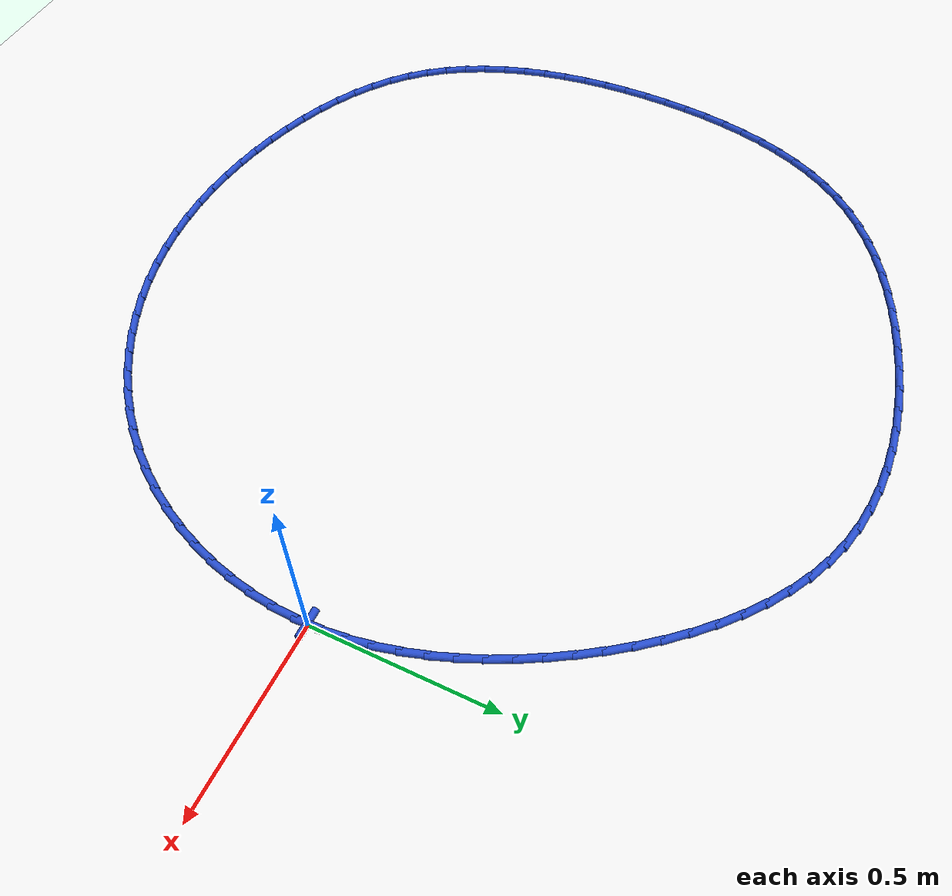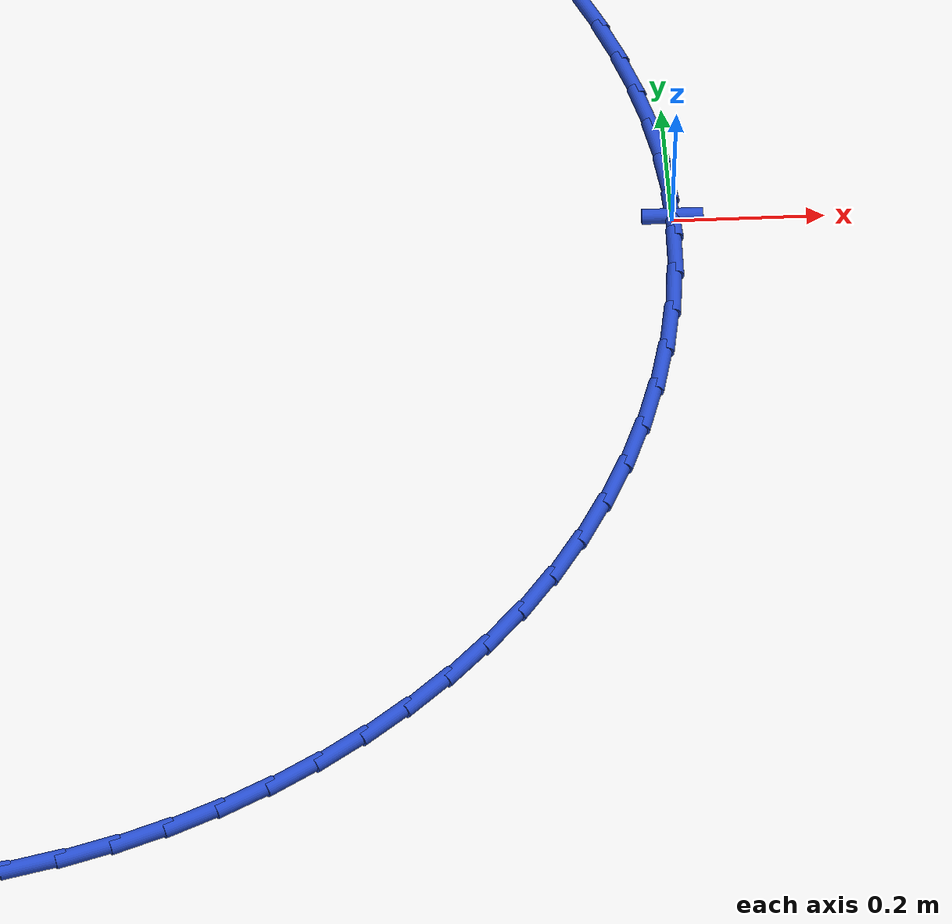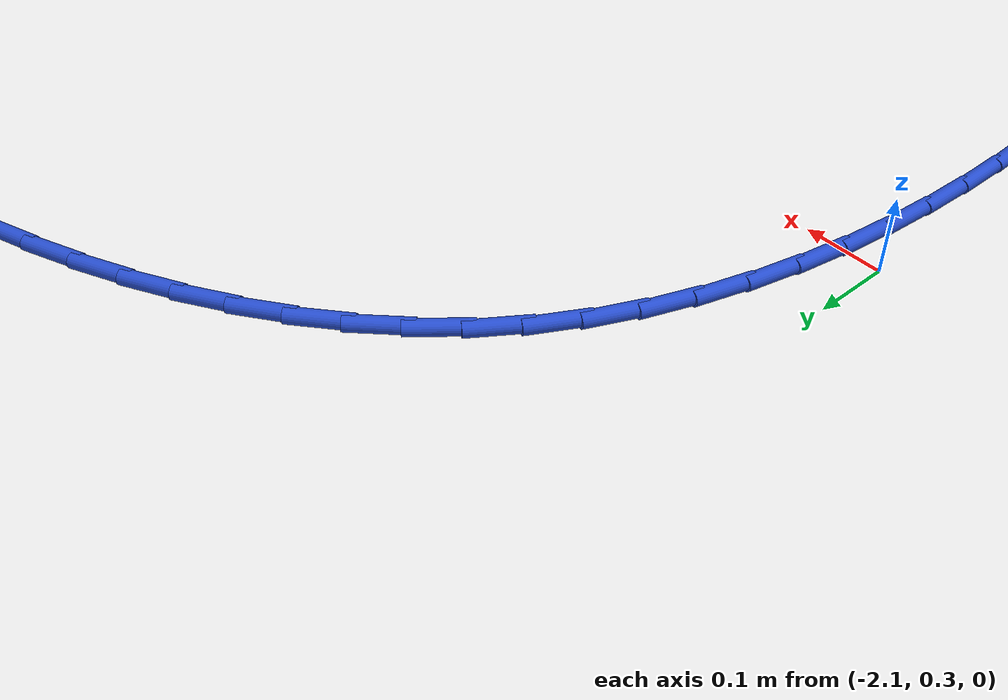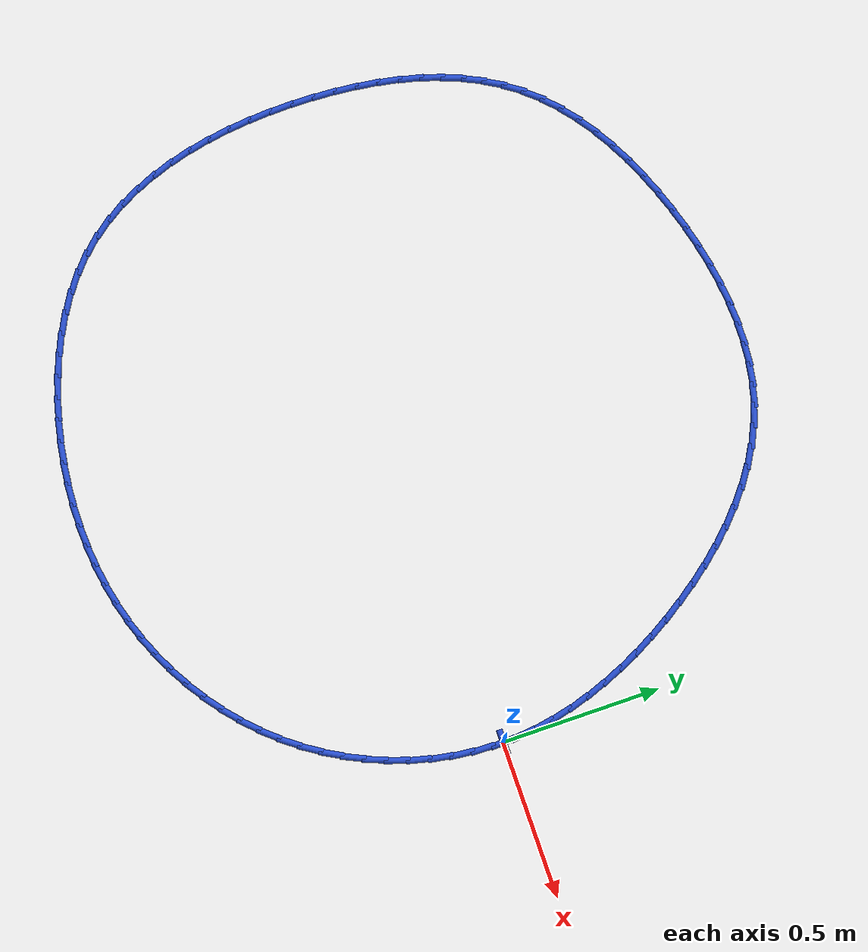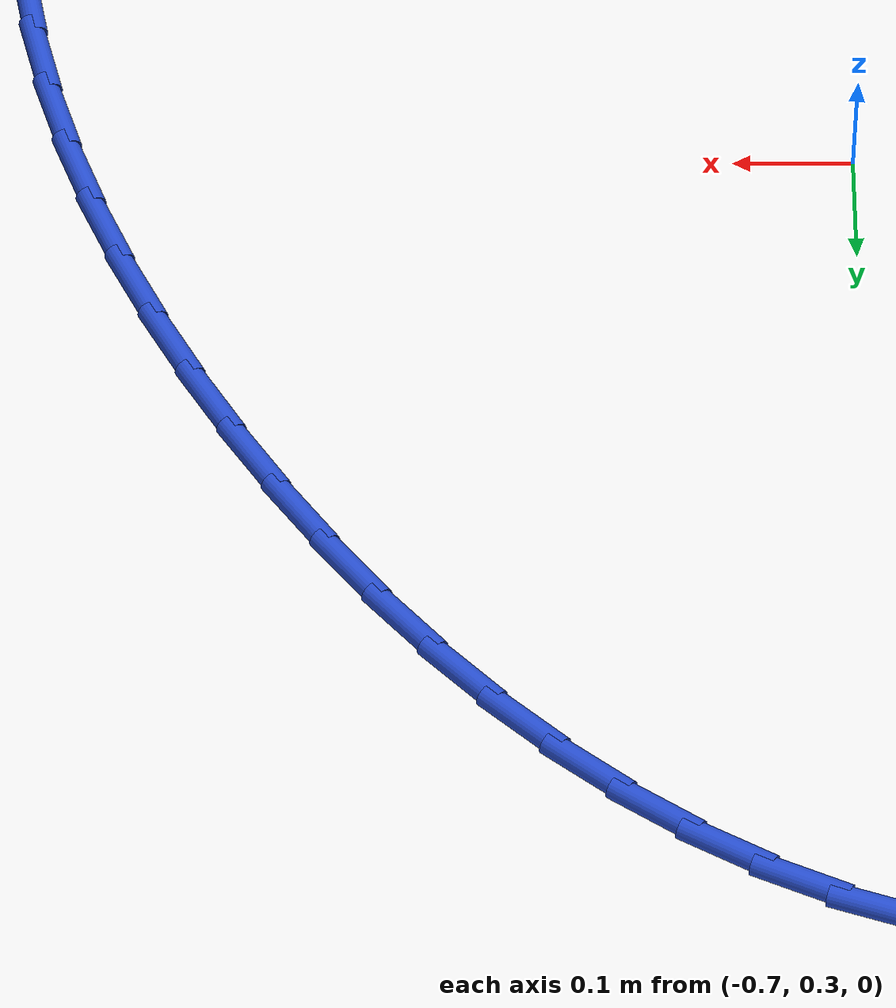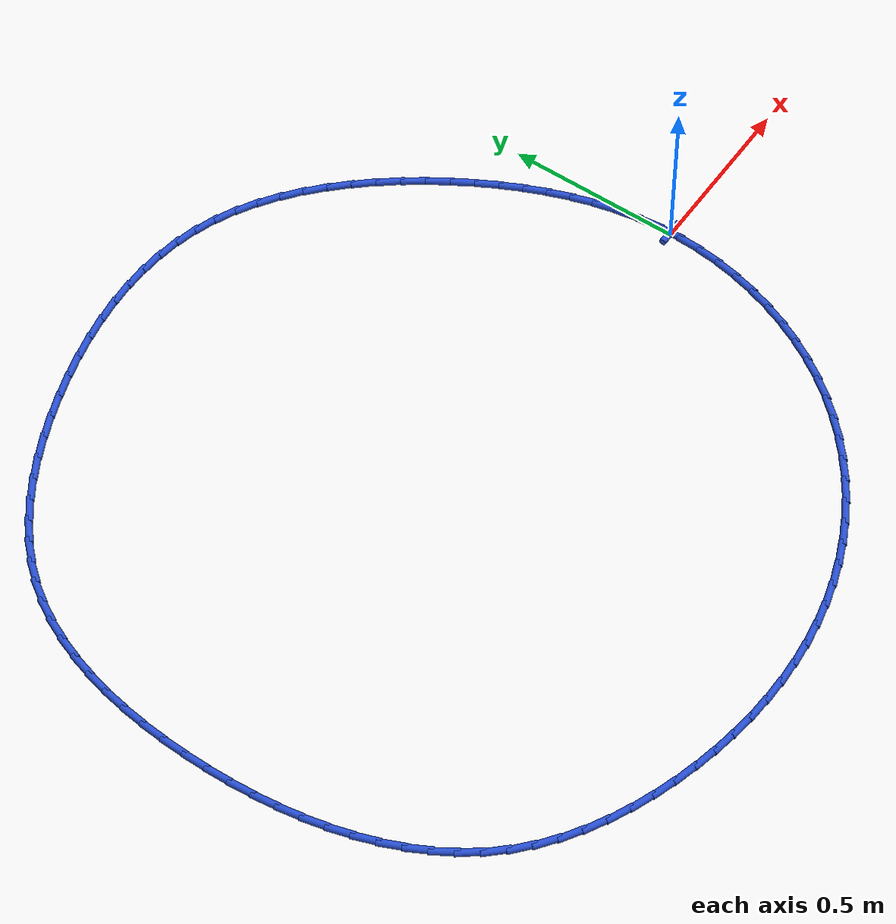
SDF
<sdf version="1.6">
 <world name="default">
  <light name="sun" type="directional">
   <pose>0 0 10 0 -0 0</pose>
   <diffuse>0.8 0.8 0.8 1</diffuse>
   <specular>0.2 0.2 0.2 1</specular>
   <attenuation>
    <range>1000</range>
    <constant>0.9</constant>
    <linear>0.01</linear>
    <quadratic>0.001</quadratic>
   </attenuation>
   <direction>-0.5 0.1 -0.9</direction>
  </light>
  <model name="ground_plane">
   <static>1</static>
   <link name="link">
    <collision name="collision">
     <geometry><plane><normal>0 0 1</normal><size>100 100</size></plane></geometry>
     <surface><friction><ode><mu>100</mu><mu2>50</mu2></ode></friction></surface>
    </collision>
    <visual name="visual">
     <cast_shadows>0</cast_shadows>
     <geometry><plane><normal>0 0 1</normal><size>100 100</size></plane></geometry>
     <material>
      <script><uri>file://media/materials/scripts/gazebo.material</uri><name>Gazebo/WhiteGlow</name></script>
     </material>
    </visual>
   </link>
  </model>
  <gravity>0 0 -9.8</gravity>
  <magnetic_field>6e-06 2.3e-05 -4.2e-05</magnetic_field>
  <atmosphere type="adiabatic"/>
  <physics name="default_physics" default="0" type="ode">
   <max_step_size>0.001</max_step_size>
   <real_time_factor>1</real_time_factor>
   <real_time_update_rate>1000</real_time_update_rate>
  </physics>
  <scene><ambient>0.4 0.4 0.4 1</ambient><background>0.7 0.7 0.7 1</background><shadows>1</shadows></scene>
  <spherical_coordinates>
   <surface_model>EARTH_WGS84</surface_model>
   <latitude_deg>0</latitude_deg>
   <longitude_deg>0</longitude_deg>
   <elevation>0</elevation>
   <heading_deg>0</heading_deg>
  </spherical_coordinates>
  <model name="line">
   <link name="link_0">
    <pose>2.0816681711721685e-17 6.938893903907228e-17 0.01 0 1.57 -1.5202223601423688</pose>
    <collision name="collision">
     <geometry><cylinder><radius>0.01</radius><length>0.08</length></cylinder></geometry>
    </collision>
    <visual name="visual">
     <material>
      <script><name>Gazebo/Blue</name><uri>file://media/materials/scripts/gazebo.material</uri></script>
     </material>
     <geometry><cylinder><radius>0.01</radius><length>0.08</length></cylinder></geometry>
    </visual>
   </link>
   <link name="link_1">
    <pose>-0.0032852434347706372 0.06490378858313862 0.01 0 1.57 -1.4490318599067324</pose>
    <collision name="collision">
     <geometry><cylinder><radius>0.01</radius><length>0.08</length></cylinder></geometry>
    </collision>
    <visual name="visual">
     <material>
      <script><name>Gazebo/Blue</name><uri>file://media/materials/scripts/gazebo.material</uri></script>
     </material>
     <geometry><cylinder><radius>0.01</radius><length>0.08</length></cylinder></geometry>
    </visual>
   </link>
   <link name="link_2">
    <pose>-0.011164497213758952 0.12929264211846367 0.01 0 1.57 -1.3814567969587568</pose>
    <collision name="collision">
     <geometry><cylinder><radius>0.01</radius><length>0.08</length></cylinder></geometry>
    </collision>
    <visual name="visual">
     <material>
      <script><name>Gazebo/Blue</name><uri>file://media/materials/scripts/gazebo.material</uri></script>
     </material>
     <geometry><cylinder><radius>0.01</radius><length>0.08</length></cylinder></geometry>
    </visual>
   </link>
   <link name="link_3">
    <pose>-0.023392796382314632 0.19310299795150238 0.01 0 1.57 -1.3177837166110253</pose>
    <collision name="collision">
     <geometry><cylinder><radius>0.01</radius><length>0.08</length></cylinder></geometry>
    </collision>
    <visual name="visual">
     <material>
      <script><name>Gazebo/Blue</name><uri>file://media/materials/scripts/gazebo.material</uri></script>
     </material>
     <geometry><cylinder><radius>0.01</radius><length>0.08</length></cylinder></geometry>
    </visual>
   </link>
   <link name="link_4">
    <pose>-0.039725175985787384 0.25627129342778177 0.01 0 1.57 -1.2581417333483003</pose>
    <collision name="collision">
     <geometry><cylinder><radius>0.01</radius><length>0.08</length></cylinder></geometry>
    </collision>
    <visual name="visual">
     <material>
      <script><name>Gazebo/Blue</name><uri>file://media/materials/scripts/gazebo.material</uri></script>
     </material>
     <geometry><cylinder><radius>0.01</radius><length>0.08</length></cylinder></geometry>
    </visual>
   </link>
   <link name="link_5">
    <pose>-0.05991667106952688 0.31873396589282893 0.01 0 1.57 -1.2025302986739368</pose>
    <collision name="collision">
     <geometry><cylinder><radius>0.01</radius><length>0.08</length></cylinder></geometry>
    </collision>
    <visual name="visual">
     <material>
      <script><name>Gazebo/Blue</name><uri>file://media/materials/scripts/gazebo.material</uri></script>
     </material>
     <geometry><cylinder><radius>0.01</radius><length>0.08</length></cylinder></geometry>
    </visual>
   </link>
   <link name="link_6">
    <pose>-0.08372231667888283 0.38042745269217104 0.01 0 1.57 -1.1508498058420664</pose>
    <collision name="collision">
     <geometry><cylinder><radius>0.01</radius><length>0.08</length></cylinder></geometry>
    </collision>
    <visual name="visual">
     <material>
      <script><name>Gazebo/Blue</name><uri>file://media/materials/scripts/gazebo.material</uri></script>
     </material>
     <geometry><cylinder><radius>0.01</radius><length>0.08</length></cylinder></geometry>
    </visual>
   </link>
   <link name="link_7">
    <pose>-0.11089714785920499 0.4412881911713353 0.01 0 1.57 -1.1029306444408744</pose>
    <collision name="collision">
     <geometry><cylinder><radius>0.01</radius><length>0.08</length></cylinder></geometry>
    </collision>
    <visual name="visual">
     <material>
      <script><name>Gazebo/Blue</name><uri>file://media/materials/scripts/gazebo.material</uri></script>
     </material>
     <geometry><cylinder><radius>0.01</radius><length>0.08</length></cylinder></geometry>
    </visual>
   </link>
   <link name="link_8">
    <pose>-0.14119619965584299 0.5012526186758486 0.01 0 1.57 -1.0585582054475426</pose>
    <collision name="collision">
     <geometry><cylinder><radius>0.01</radius><length>0.08</length></cylinder></geometry>
    </collision>
    <visual name="visual">
     <material>
      <script><name>Gazebo/Blue</name><uri>file://media/materials/scripts/gazebo.material</uri></script>
     </material>
     <geometry><cylinder><radius>0.01</radius><length>0.08</length></cylinder></geometry>
    </visual>
   </link>
   <link name="link_9">
    <pose>-0.17437450711414648 0.560257172551238 0.01 0 1.57 -1.017363008705654</pose>
    <collision name="collision">
     <geometry><cylinder><radius>0.01</radius><length>0.08</length></cylinder></geometry>
    </collision>
    <visual name="visual">
     <material>
      <script><name>Gazebo/Blue</name><uri>file://media/materials/scripts/gazebo.material</uri></script>
     </material>
     <geometry><cylinder><radius>0.01</radius><length>0.08</length></cylinder></geometry>
    </visual>
   </link>
   <link name="link_10">
    <pose>-0.2101918570021424 0.618229143480172 0.01 0 1.57 -0.9764073362482691</pose>
    <collision name="collision">
     <geometry><cylinder><radius>0.01</radius><length>0.08</length></cylinder></geometry>
    </collision>
    <visual name="visual">
     <material>
      <script><name>Gazebo/Blue</name><uri>file://media/materials/scripts/gazebo.material</uri></script>
     </material>
     <geometry><cylinder><radius>0.01</radius><length>0.08</length></cylinder></geometry>
    </visual>
   </link>
   <link name="link_11">
    <pose>-0.24850441258039296 0.6749103055769756 0.01 0 1.57 -0.9327434005835694</pose>
    <collision name="collision">
     <geometry><cylinder><radius>0.01</radius><length>0.08</length></cylinder></geometry>
    </collision>
    <visual name="visual">
     <material>
      <script><name>Gazebo/Blue</name><uri>file://media/materials/scripts/gazebo.material</uri></script>
     </material>
     <geometry><cylinder><radius>0.01</radius><length>0.08</length></cylinder></geometry>
    </visual>
   </link>
   <link name="link_12">
    <pose>-0.28925804271117433 0.7298697572862852 0.01 0 1.57 -0.8857050484634152</pose>
    <collision name="collision">
     <geometry><cylinder><radius>0.01</radius><length>0.08</length></cylinder></geometry>
    </collision>
    <visual name="visual">
     <material>
      <script><name>Gazebo/Blue</name><uri>file://media/materials/scripts/gazebo.material</uri></script>
     </material>
     <geometry><cylinder><radius>0.01</radius><length>0.08</length></cylinder></geometry>
    </visual>
   </link>
   <link name="link_13">
    <pose>-0.33240203164904053 0.7826700227124764 0.01 0 1.57 -0.834685287914541</pose>
    <collision name="collision">
     <geometry><cylinder><radius>0.01</radius><length>0.08</length></cylinder></geometry>
    </collision>
    <visual name="visual">
     <material>
      <script><name>Gazebo/Blue</name><uri>file://media/materials/scripts/gazebo.material</uri></script>
     </material>
     <geometry><cylinder><radius>0.01</radius><length>0.08</length></cylinder></geometry>
    </visual>
   </link>
   <link name="link_14">
    <pose>-0.3778856636485457 0.8328736259599254 0.01 0 1.57 -0.7790460128691424</pose>
    <collision name="collision">
     <geometry><cylinder><radius>0.01</radius><length>0.08</length></cylinder></geometry>
    </collision>
    <visual name="visual">
     <material>
      <script><name>Gazebo/Blue</name><uri>file://media/materials/scripts/gazebo.material</uri></script>
     </material>
     <geometry><cylinder><radius>0.01</radius><length>0.08</length></cylinder></geometry>
    </visual>
   </link>
   <link name="link_15">
    <pose>-0.4256582229642437 0.8800430911330075 0.01 0 1.57 -0.7181322564949646</pose>
    <collision name="collision">
     <geometry><cylinder><radius>0.01</radius><length>0.08</length></cylinder></geometry>
    </collision>
    <visual name="visual">
     <material>
      <script><name>Gazebo/Blue</name><uri>file://media/materials/scripts/gazebo.material</uri></script>
     </material>
     <geometry><cylinder><radius>0.01</radius><length>0.08</length></cylinder></geometry>
    </visual>
   </link>
   <link name="link_16">
    <pose>-0.47566899385068895 0.9237409423360989 0.01 0 1.57 -0.6513027858250384</pose>
    <collision name="collision">
     <geometry><cylinder><radius>0.01</radius><length>0.08</length></cylinder></geometry>
    </collision>
    <visual name="visual">
     <material>
      <script><name>Gazebo/Blue</name><uri>file://media/materials/scripts/gazebo.material</uri></script>
     </material>
     <geometry><cylinder><radius>0.01</radius><length>0.08</length></cylinder></geometry>
    </visual>
   </link>
   <link name="link_17">
    <pose>-0.5278672605624353 0.9635297036735757 0.01 0 1.57 -0.5779832220956896</pose>
    <collision name="collision">
     <geometry><cylinder><radius>0.01</radius><length>0.08</length></cylinder></geometry>
    </collision>
    <visual name="visual">
     <material>
      <script><name>Gazebo/Blue</name><uri>file://media/materials/scripts/gazebo.material</uri></script>
     </material>
     <geometry><cylinder><radius>0.01</radius><length>0.08</length></cylinder></geometry>
    </visual>
   </link>
   <link name="link_18">
    <pose>-0.5822023073540369 0.9989718992498134 0.01 0 1.57 -0.49774716574735073</pose>
    <collision name="collision">
     <geometry><cylinder><radius>0.01</radius><length>0.08</length></cylinder></geometry>
    </collision>
    <visual name="visual">
     <material>
      <script><name>Gazebo/Blue</name><uri>file://media/materials/scripts/gazebo.material</uri></script>
     </material>
     <geometry><cylinder><radius>0.01</radius><length>0.08</length></cylinder></geometry>
    </visual>
   </link>
   <link name="link_19">
    <pose>-0.6386234184800479 1.0296300531691887 0.01 0 1.57 -0.41042632719341593</pose>
    <collision name="collision">
     <geometry><cylinder><radius>0.01</radius><length>0.08</length></cylinder></geometry>
    </collision>
    <visual name="visual">
     <material>
      <script><name>Gazebo/Blue</name><uri>file://media/materials/scripts/gazebo.material</uri></script>
     </material>
     <geometry><cylinder><radius>0.01</radius><length>0.08</length></cylinder></geometry>
    </visual>
   </link>
   <link name="link_20">
    <pose>-0.6970798781950223 1.0550666895360763 0.01 0 1.57 -0.31693283512487985</pose>
    <collision name="collision">
     <geometry><cylinder><radius>0.01</radius><length>0.08</length></cylinder></geometry>
    </collision>
    <visual name="visual">
     <material>
      <script><name>Gazebo/Blue</name><uri>file://media/materials/scripts/gazebo.material</uri></script>
     </material>
     <geometry><cylinder><radius>0.01</radius><length>0.08</length></cylinder></geometry>
    </visual>
   </link>
   <link name="link_21">
    <pose>-0.7575079977851633 1.0748864391878725 0.01 0 1.57 -0.2252390777203573</pose>
    <collision name="collision">
     <geometry><cylinder><radius>0.01</radius><length>0.08</length></cylinder></geometry>
    </collision>
    <visual name="visual">
     <material>
      <script><name>Gazebo/Blue</name><uri>file://media/materials/scripts/gazebo.material</uri></script>
     </material>
     <geometry><cylinder><radius>0.01</radius><length>0.08</length></cylinder></geometry>
    </visual>
   </link>
   <link name="link_22">
    <pose>-0.8197072808931384 1.089137973428706 0.01 0 1.57 -0.14035785605204856</pose>
    <collision name="collision">
     <geometry><cylinder><radius>0.01</radius><length>0.08</length></cylinder></geometry>
    </collision>
    <visual name="visual">
     <material>
      <script><name>Gazebo/Blue</name><uri>file://media/materials/scripts/gazebo.material</uri></script>
     </material>
     <geometry><cylinder><radius>0.01</radius><length>0.08</length></cylinder></geometry>
    </visual>
   </link>
   <link name="link_23">
    <pose>-0.8833951922866781 1.0981362394766492 0.01 0 1.57 -0.06253780243833504</pose>
    <collision name="collision">
     <geometry><cylinder><radius>0.01</radius><length>0.08</length></cylinder></geometry>
    </collision>
    <visual name="visual">
     <material>
      <script><name>Gazebo/Blue</name><uri>file://media/materials/scripts/gazebo.material</uri></script>
     </material>
     <geometry><cylinder><radius>0.01</radius><length>0.08</length></cylinder></geometry>
    </visual>
   </link>
   <link name="link_24">
    <pose>-0.9482880836939283 1.1021997971740713 0.01 0 1.57 0.008396024439587863</pose>
    <collision name="collision">
     <geometry><cylinder><radius>0.01</radius><length>0.08</length></cylinder></geometry>
    </collision>
    <visual name="visual">
     <material>
      <script><name>Gazebo/Blue</name><uri>file://media/materials/scripts/gazebo.material</uri></script>
     </material>
     <geometry><cylinder><radius>0.01</radius><length>0.08</length></cylinder></geometry>
    </visual>
   </link>
   <link name="link_25">
    <pose>-1.0141023068430344 1.1016472063633416 0.01 0 1.57 0.07285862043494026</pose>
    <collision name="collision">
     <geometry><cylinder><radius>0.01</radius><length>0.08</length></cylinder></geometry>
    </collision>
    <visual name="visual">
     <material>
      <script><name>Gazebo/Blue</name><uri>file://media/materials/scripts/gazebo.material</uri></script>
     </material>
     <geometry><cylinder><radius>0.01</radius><length>0.08</length></cylinder></geometry>
    </visual>
   </link>
   <link name="link_26">
    <pose>-1.0805542134621415 1.0967970268868286 0.01 0 1.57 0.13140050366775619</pose>
    <collision name="collision">
     <geometry><cylinder><radius>0.01</radius><length>0.08</length></cylinder></geometry>
    </collision>
    <visual name="visual">
     <material>
      <script><name>Gazebo/Blue</name><uri>file://media/materials/scripts/gazebo.material</uri></script>
     </material>
     <geometry><cylinder><radius>0.01</radius><length>0.08</length></cylinder></geometry>
    </visual>
   </link>
   <link name="link_27">
    <pose>-1.1473601552793953 1.087967818586902 0.01 0 1.57 0.1846308786092395</pose>
    <collision name="collision">
     <geometry><cylinder><radius>0.01</radius><length>0.08</length></cylinder></geometry>
    </collision>
    <visual name="visual">
     <material>
      <script><name>Gazebo/Blue</name><uri>file://media/materials/scripts/gazebo.material</uri></script>
     </material>
     <geometry><cylinder><radius>0.01</radius><length>0.08</length></cylinder></geometry>
    </visual>
   </link>
   <link name="link_28">
    <pose>-1.2142364840229416 1.0754781413059307 0.01 0 1.57 0.23316713310214854</pose>
    <collision name="collision">
     <geometry><cylinder><radius>0.01</radius><length>0.08</length></cylinder></geometry>
    </collision>
    <visual name="visual">
     <material>
      <script><name>Gazebo/Blue</name><uri>file://media/materials/scripts/gazebo.material</uri></script>
     </material>
     <geometry><cylinder><radius>0.01</radius><length>0.08</length></cylinder></geometry>
    </visual>
   </link>
   <link name="link_29">
    <pose>-1.2808995514209247 1.0596465548862841 0.01 0 1.57 0.2776053402650076</pose>
    <collision name="collision">
     <geometry><cylinder><radius>0.01</radius><length>0.08</length></cylinder></geometry>
    </collision>
    <visual name="visual">
     <material>
      <script><name>Gazebo/Blue</name><uri>file://media/materials/scripts/gazebo.material</uri></script>
     </material>
     <geometry><cylinder><radius>0.01</radius><length>0.08</length></cylinder></geometry>
    </visual>
   </link>
   <link name="link_30">
    <pose>-1.347065709201491 1.0407916191703308 0.01 0 1.57 0.31876971007618754</pose>
    <collision name="collision">
     <geometry><cylinder><radius>0.01</radius><length>0.08</length></cylinder></geometry>
    </collision>
    <visual name="visual">
     <material>
      <script><name>Gazebo/Blue</name><uri>file://media/materials/scripts/gazebo.material</uri></script>
     </material>
     <geometry><cylinder><radius>0.01</radius><length>0.08</length></cylinder></geometry>
    </visual>
   </link>
   <link name="link_31">
    <pose>-1.412445766993821 1.019214594238291 0.01 0 1.57 0.36073953937575165</pose>
    <collision name="collision">
     <geometry><cylinder><radius>0.01</radius><length>0.08</length></cylinder></geometry>
    </collision>
    <visual name="visual">
     <material>
      <script><name>Gazebo/Blue</name><uri>file://media/materials/scripts/gazebo.material</uri></script>
     </material>
     <geometry><cylinder><radius>0.01</radius><length>0.08</length></cylinder></geometry>
    </visual>
   </link>
   <link name="link_32">
    <pose>-1.4766759502680276 0.9949839243689831 0.01 0 1.57 0.4066031005971883</pose>
    <collision name="collision">
     <geometry><cylinder><radius>0.01</radius><length>0.08</length></cylinder></geometry>
    </collision>
    <visual name="visual">
     <material>
      <script><name>Gazebo/Blue</name><uri>file://media/materials/scripts/gazebo.material</uri></script>
     </material>
     <geometry><cylinder><radius>0.01</radius><length>0.08</length></cylinder></geometry>
    </visual>
   </link>
   <link name="link_33">
    <pose>-1.5393390576276544 0.9680012809109914 0.01 0 1.57 0.45700370729811834</pose>
    <collision name="collision">
     <geometry><cylinder><radius>0.01</radius><length>0.08</length></cylinder></geometry>
    </collision>
    <visual name="visual">
     <material>
      <script><name>Gazebo/Blue</name><uri>file://media/materials/scripts/gazebo.material</uri></script>
     </material>
     <geometry><cylinder><radius>0.01</radius><length>0.08</length></cylinder></geometry>
    </visual>
   </link>
   <link name="link_34">
    <pose>-1.6000167252235316 0.9381647065957283 0.01 0 1.57 0.5125643041102167</pose>
    <collision name="collision">
     <geometry><cylinder><radius>0.01</radius><length>0.08</length></cylinder></geometry>
    </collision>
    <visual name="visual">
     <material>
      <script><name>Gazebo/Blue</name><uri>file://media/materials/scripts/gazebo.material</uri></script>
     </material>
     <geometry><cylinder><radius>0.01</radius><length>0.08</length></cylinder></geometry>
    </visual>
   </link>
   <link name="link_35">
    <pose>-1.6582905892064872 0.9053722441546057 0.01 0 1.57 0.5739208240982773</pose>
    <collision name="collision">
     <geometry><cylinder><radius>0.01</radius><length>0.08</length></cylinder></geometry>
    </collision>
    <visual name="visual">
     <material>
      <script><name>Gazebo/Blue</name><uri>file://media/materials/scripts/gazebo.material</uri></script>
     </material>
     <geometry><cylinder><radius>0.01</radius><length>0.08</length></cylinder></geometry>
    </visual>
   </link>
   <link name="link_36">
    <pose>-1.7137422857273505 0.8695219363190352 0.01 0 1.57 0.6416812300250371</pose>
    <collision name="collision">
     <geometry><cylinder><radius>0.01</radius><length>0.08</length></cylinder></geometry>
    </collision>
    <visual name="visual">
     <material>
      <script><name>Gazebo/Blue</name><uri>file://media/materials/scripts/gazebo.material</uri></script>
     </material>
     <geometry><cylinder><radius>0.01</radius><length>0.08</length></cylinder></geometry>
    </visual>
   </link>
   <link name="link_37">
    <pose>-1.7659534509369506 0.8305118258204289 0.01 0 1.57 0.7163590498264155</pose>
    <collision name="collision">
     <geometry><cylinder><radius>0.01</radius><length>0.08</length></cylinder></geometry>
    </collision>
    <visual name="visual">
     <material>
      <script><name>Gazebo/Blue</name><uri>file://media/materials/scripts/gazebo.material</uri></script>
     </material>
     <geometry><cylinder><radius>0.01</radius><length>0.08</length></cylinder></geometry>
    </visual>
   </link>
   <link name="link_38">
    <pose>-1.8145057209861175 0.7882399553901991 0.01 0 1.57 0.798276919525755</pose>
    <collision name="collision">
     <geometry><cylinder><radius>0.01</radius><length>0.08</length></cylinder></geometry>
    </collision>
    <visual name="visual">
     <material>
      <script><name>Gazebo/Blue</name><uri>file://media/materials/scripts/gazebo.material</uri></script>
     </material>
     <geometry><cylinder><radius>0.01</radius><length>0.08</length></cylinder></geometry>
    </visual>
   </link>
   <link name="link_39">
    <pose>-1.8589807320256793 0.7426043677597572 0.01 0 1.57 0.8874364982516892</pose>
    <collision name="collision">
     <geometry><cylinder><radius>0.01</radius><length>0.08</length></cylinder></geometry>
    </collision>
    <visual name="visual">
     <material>
      <script><name>Gazebo/Blue</name><uri>file://media/materials/scripts/gazebo.material</uri></script>
     </material>
     <geometry><cylinder><radius>0.01</radius><length>0.08</length></cylinder></geometry>
    </visual>
   </link>
   <link name="link_40">
    <pose>-1.8989604508126976 0.6935033170272523 0.01 0 1.57 0.9803146711823199</pose>
    <collision name="collision">
     <geometry><cylinder><radius>0.01</radius><length>0.08</length></cylinder></geometry>
    </collision>
    <visual name="visual">
     <material>
      <script><name>Gazebo/Blue</name><uri>file://media/materials/scripts/gazebo.material</uri></script>
     </material>
     <geometry><cylinder><radius>0.01</radius><length>0.08</length></cylinder></geometry>
    </visual>
   </link>
   <link name="link_41">
    <pose>-1.9341911335798208 0.6409400926078281 0.01 0 1.57 1.068002250723521</pose>
    <collision name="collision">
     <geometry><cylinder><radius>0.01</radius><length>0.08</length></cylinder></geometry>
    </collision>
    <visual name="visual">
     <material>
      <script><name>Gazebo/Blue</name><uri>file://media/materials/scripts/gazebo.material</uri></script>
     </material>
     <geometry><cylinder><radius>0.01</radius><length>0.08</length></cylinder></geometry>
    </visual>
   </link>
   <link name="link_42">
    <pose>-1.9648486573414463 0.5851926537020007 0.01 0 1.57 1.1485755233855581</pose>
    <collision name="collision">
     <geometry><cylinder><radius>0.01</radius><length>0.08</length></cylinder></geometry>
    </collision>
    <visual name="visual">
     <material>
      <script><name>Gazebo/Blue</name><uri>file://media/materials/scripts/gazebo.material</uri></script>
     </material>
     <geometry><cylinder><radius>0.01</radius><length>0.08</length></cylinder></geometry>
    </visual>
   </link>
   <link name="link_43">
    <pose>-1.9911782571433274 0.5265833022339039 0.01 0 1.57 1.2218675406444055</pose>
    <collision name="collision">
     <geometry><cylinder><radius>0.01</radius><length>0.08</length></cylinder></geometry>
    </collision>
    <visual name="visual">
     <material>
      <script><name>Gazebo/Blue</name><uri>file://media/materials/scripts/gazebo.material</uri></script>
     </material>
     <geometry><cylinder><radius>0.01</radius><length>0.08</length></cylinder></geometry>
    </visual>
   </link>
   <link name="link_44">
    <pose>-2.013425168031214 0.4654343401276723 0.01 0 1.57 1.2880551194597347</pose>
    <collision name="collision">
     <geometry><cylinder><radius>0.01</radius><length>0.08</length></cylinder></geometry>
    </collision>
    <visual name="visual">
     <material>
      <script><name>Gazebo/Blue</name><uri>file://media/materials/scripts/gazebo.material</uri></script>
     </material>
     <geometry><cylinder><radius>0.01</radius><length>0.08</length></cylinder></geometry>
    </visual>
   </link>
   <link name="link_45">
    <pose>-2.03183462505086 0.4020680693074402 0.01 0 1.57 1.3475364035428783</pose>
    <collision name="collision">
     <geometry><cylinder><radius>0.01</radius><length>0.08</length></cylinder></geometry>
    </collision>
    <visual name="visual">
     <material>
      <script><name>Gazebo/Blue</name><uri>file://media/materials/scripts/gazebo.material</uri></script>
     </material>
     <geometry><cylinder><radius>0.01</radius><length>0.08</length></cylinder></geometry>
    </visual>
   </link>
   <link name="link_46">
    <pose>-2.046651863248016 0.33680679169734207 0.01 0 1.57 1.4008290961022678</pose>
    <collision name="collision">
     <geometry><cylinder><radius>0.01</radius><length>0.08</length></cylinder></geometry>
    </collision>
    <visual name="visual">
     <material>
      <script><name>Gazebo/Blue</name><uri>file://media/materials/scripts/gazebo.material</uri></script>
     </material>
     <geometry><cylinder><radius>0.01</radius><length>0.08</length></cylinder></geometry>
    </visual>
   </link>
   <link name="link_47">
    <pose>-2.0581221176684332 0.2699728092215121 0.01 0 1.57 1.4484960315980364</pose>
    <collision name="collision">
     <geometry><cylinder><radius>0.01</radius><length>0.08</length></cylinder></geometry>
    </collision>
    <visual name="visual">
     <material>
      <script><name>Gazebo/Blue</name><uri>file://media/materials/scripts/gazebo.material</uri></script>
     </material>
     <geometry><cylinder><radius>0.01</radius><length>0.08</length></cylinder></geometry>
    </visual>
   </link>
   <link name="link_48">
    <pose>-2.066490623357865 0.20188842380408503 0.01 0 1.57 1.491096023785072</pose>
    <collision name="collision">
     <geometry><cylinder><radius>0.01</radius><length>0.08</length></cylinder></geometry>
    </collision>
    <visual name="visual">
     <material>
      <script><name>Gazebo/Blue</name><uri>file://media/materials/scripts/gazebo.material</uri></script>
     </material>
     <geometry><cylinder><radius>0.01</radius><length>0.08</length></cylinder></geometry>
    </visual>
   </link>
   <link name="link_49">
    <pose>-2.072002615362063 0.13287593736919454 0.01 0 1.57 1.5292319305067756</pose>
    <collision name="collision">
     <geometry><cylinder><radius>0.01</radius><length>0.08</length></cylinder></geometry>
    </collision>
    <visual name="visual">
     <material>
      <script><name>Gazebo/Blue</name><uri>file://media/materials/scripts/gazebo.material</uri></script>
     </material>
     <geometry><cylinder><radius>0.01</radius><length>0.08</length></cylinder></geometry>
    </visual>
   </link>
   <link name="link_50">
    <pose>-2.0748979113117927 0.06325797794760236 0.01 0 1.57 1.5659826988547842</pose>
    <collision name="collision">
     <geometry><cylinder><radius>0.01</radius><length>0.08</length></cylinder></geometry>
    </collision>
    <visual name="visual">
     <material>
      <script><name>Gazebo/Blue</name><uri>file://media/materials/scripts/gazebo.material</uri></script>
     </material>
     <geometry><cylinder><radius>0.01</radius><length>0.08</length></cylinder></geometry>
    </visual>
   </link>
   <link name="link_51">
    <pose>-2.075234337641267 -0.006631871290730464 0.01 0 1.57 -1.5366378935278298</pose>
    <collision name="collision">
     <geometry><cylinder><radius>0.01</radius><length>0.08</length></cylinder></geometry>
    </collision>
    <visual name="visual">
     <material>
      <script><name>Gazebo/Blue</name><uri>file://media/materials/scripts/gazebo.material</uri></script>
     </material>
     <geometry><cylinder><radius>0.01</radius><length>0.08</length></cylinder></geometry>
    </visual>
   </link>
   <link name="link_52">
    <pose>-2.0728486438698956 -0.0764467192333633 0.01 0 1.57 -1.494790441120984</pose>
    <collision name="collision">
     <geometry><cylinder><radius>0.01</radius><length>0.08</length></cylinder></geometry>
    </collision>
    <visual name="visual">
     <material>
      <script><name>Gazebo/Blue</name><uri>file://media/materials/scripts/gazebo.material</uri></script>
     </material>
     <geometry><cylinder><radius>0.01</radius><length>0.08</length></cylinder></geometry>
    </visual>
   </link>
   <link name="link_53">
    <pose>-2.0675642520885997 -0.14583887251018057 0.01 0 1.57 -1.4495712661845992</pose>
    <collision name="collision">
     <geometry><cylinder><radius>0.01</radius><length>0.08</length></cylinder></geometry>
    </collision>
    <visual name="visual">
     <material>
      <script><name>Gazebo/Blue</name><uri>file://media/materials/scripts/gazebo.material</uri></script>
     </material>
     <geometry><cylinder><radius>0.01</radius><length>0.08</length></cylinder></geometry>
    </visual>
   </link>
   <link name="link_54">
    <pose>-2.059204584388302 -0.21446063775106647 0.01 0 1.57 -1.400450215209708</pose>
    <collision name="collision">
     <geometry><cylinder><radius>0.01</radius><length>0.08</length></cylinder></geometry>
    </collision>
    <visual name="visual">
     <material>
      <script><name>Gazebo/Blue</name><uri>file://media/materials/scripts/gazebo.material</uri></script>
     </material>
     <geometry><cylinder><radius>0.01</radius><length>0.08</length></cylinder></geometry>
    </visual>
   </link>
   <link name="link_55">
    <pose>-2.047593062859923 -0.2819643215859054 0.01 0 1.57 -1.3468685402700502</pose>
    <collision name="collision">
     <geometry><cylinder><radius>0.01</radius><length>0.08</length></cylinder></geometry>
    </collision>
    <visual name="visual">
     <material>
      <script><name>Gazebo/Blue</name><uri>file://media/materials/scripts/gazebo.material</uri></script>
     </material>
     <geometry><cylinder><radius>0.01</radius><length>0.08</length></cylinder></geometry>
    </visual>
   </link>
   <link name="link_56">
    <pose>-2.032553109594387 -0.3480022306445815 0.01 0 1.57 -1.2882534728996737</pose>
    <collision name="collision">
     <geometry><cylinder><radius>0.01</radius><length>0.08</length></cylinder></geometry>
    </collision>
    <visual name="visual">
     <material>
      <script><name>Gazebo/Blue</name><uri>file://media/materials/scripts/gazebo.material</uri></script>
     </material>
     <geometry><cylinder><radius>0.01</radius><length>0.08</length></cylinder></geometry>
    </visual>
   </link>
   <link name="link_57">
    <pose>-2.0139081466826148 -0.4122266715569792 0.01 0 1.57 -1.2240463689415513</pose>
    <collision name="collision">
     <geometry><cylinder><radius>0.01</radius><length>0.08</length></cylinder></geometry>
    </collision>
    <visual name="visual">
     <material>
      <script><name>Gazebo/Blue</name><uri>file://media/materials/scripts/gazebo.material</uri></script>
     </material>
     <geometry><cylinder><radius>0.01</radius><length>0.08</length></cylinder></geometry>
    </visual>
   </link>
   <link name="link_58">
    <pose>-1.9914815962155292 -0.4742899509529821 0.01 0 1.57 -1.1537492700706975</pose>
    <collision name="collision">
     <geometry><cylinder><radius>0.01</radius><length>0.08</length></cylinder></geometry>
    </collision>
    <visual name="visual">
     <material>
      <script><name>Gazebo/Blue</name><uri>file://media/materials/scripts/gazebo.material</uri></script>
     </material>
     <geometry><cylinder><radius>0.01</radius><length>0.08</length></cylinder></geometry>
    </visual>
   </link>
   <link name="link_59">
    <pose>-1.9650968802840523 -0.5338443754624761 0.01 0 1.57 -1.0769939729257993</pose>
    <collision name="collision">
     <geometry><cylinder><radius>0.01</radius><length>0.08</length></cylinder></geometry>
    </collision>
    <visual name="visual">
     <material>
      <script><name>Gazebo/Blue</name><uri>file://media/materials/scripts/gazebo.material</uri></script>
     </material>
     <geometry><cylinder><radius>0.01</radius><length>0.08</length></cylinder></geometry>
    </visual>
   </link>
   <link name="link_60">
    <pose>-1.9345774209791053 -0.5905422517153445 0.01 0 1.57 -0.993634094489035</pose>
    <collision name="collision">
     <geometry><cylinder><radius>0.01</radius><length>0.08</length></cylinder></geometry>
    </collision>
    <visual name="visual">
     <material>
      <script><name>Gazebo/Blue</name><uri>file://media/materials/scripts/gazebo.material</uri></script>
     </material>
     <geometry><cylinder><radius>0.01</radius><length>0.08</length></cylinder></geometry>
    </visual>
   </link>
   <link name="link_61">
    <pose>-1.8997466403916106 -0.6440358863414715 0.01 0 1.57 -0.9038525987463655</pose>
    <collision name="collision">
     <geometry><cylinder><radius>0.01</radius><length>0.08</length></cylinder></geometry>
    </collision>
    <visual name="visual">
     <material>
      <script><name>Gazebo/Blue</name><uri>file://media/materials/scripts/gazebo.material</uri></script>
     </material>
     <geometry><cylinder><radius>0.01</radius><length>0.08</length></cylinder></geometry>
    </visual>
   </link>
   <link name="link_62">
    <pose>-1.8604279606124905 -0.6939775859707416 0.01 0 1.57 -0.808457683412517</pose>
    <collision name="collision">
     <geometry><cylinder><radius>0.01</radius><length>0.08</length></cylinder></geometry>
    </collision>
    <visual name="visual">
     <material>
      <script><name>Gazebo/Blue</name><uri>file://media/materials/scripts/gazebo.material</uri></script>
     </material>
     <geometry><cylinder><radius>0.01</radius><length>0.08</length></cylinder></geometry>
    </visual>
   </link>
   <link name="link_63">
    <pose>-1.8164552682835493 -0.740026501382856 0.01 0 1.57 -0.7142007212992835</pose>
    <collision name="collision">
     <geometry><cylinder><radius>0.01</radius><length>0.08</length></cylinder></geometry>
    </collision>
    <visual name="visual">
     <material>
      <script><name>Gazebo/Blue</name><uri>file://media/materials/scripts/gazebo.material</uri></script>
     </material>
     <geometry><cylinder><radius>0.01</radius><length>0.08</length></cylinder></geometry>
    </visual>
   </link>
   <link name="link_64">
    <pose>-1.7679788622748973 -0.7820487270399377 0.01 0 1.57 -0.6281037484389216</pose>
    <collision name="collision">
     <geometry><cylinder><radius>0.01</radius><length>0.08</length></cylinder></geometry>
    </collision>
    <visual name="visual">
     <material>
      <script><name>Gazebo/Blue</name><uri>file://media/materials/scripts/gazebo.material</uri></script>
     </material>
     <geometry><cylinder><radius>0.01</radius><length>0.08</length></cylinder></geometry>
    </visual>
   </link>
   <link name="link_65">
    <pose>-1.7155143004536233 -0.8201492484301508 0.01 0 1.57 -0.5501839961355535</pose>
    <collision name="collision">
     <geometry><cylinder><radius>0.01</radius><length>0.08</length></cylinder></geometry>
    </collision>
    <visual name="visual">
     <material>
      <script><name>Gazebo/Blue</name><uri>file://media/materials/scripts/gazebo.material</uri></script>
     </material>
     <geometry><cylinder><radius>0.01</radius><length>0.08</length></cylinder></geometry>
    </visual>
   </link>
   <link name="link_66">
    <pose>-1.6595974377515987 -0.854446325968963 0.01 0 1.57 -0.47976776333591764</pose>
    <collision name="collision">
     <geometry><cylinder><radius>0.01</radius><length>0.08</length></cylinder></geometry>
    </collision>
    <visual name="visual">
     <material>
      <script><name>Gazebo/Blue</name><uri>file://media/materials/scripts/gazebo.material</uri></script>
     </material>
     <geometry><cylinder><radius>0.01</radius><length>0.08</length></cylinder></geometry>
    </visual>
   </link>
   <link name="link_67">
    <pose>-1.6007641291006942 -0.8850582200718418 0.01 0 1.57 -0.4160230769296182</pose>
    <collision name="collision">
     <geometry><cylinder><radius>0.01</radius><length>0.08</length></cylinder></geometry>
    </collision>
    <visual name="visual">
     <material>
      <script><name>Gazebo/Blue</name><uri>file://media/materials/scripts/gazebo.material</uri></script>
     </material>
     <geometry><cylinder><radius>0.01</radius><length>0.08</length></cylinder></geometry>
    </visual>
   </link>
   <link name="link_68">
    <pose>-1.5395502294327819 -0.9121031911542545 0.01 0 1.57 -0.35806587457085853</pose>
    <collision name="collision">
     <geometry><cylinder><radius>0.01</radius><length>0.08</length></cylinder></geometry>
    </collision>
    <visual name="visual">
     <material>
      <script><name>Gazebo/Blue</name><uri>file://media/materials/scripts/gazebo.material</uri></script>
     </material>
     <geometry><cylinder><radius>0.01</radius><length>0.08</length></cylinder></geometry>
    </visual>
   </link>
   <link name="link_69">
    <pose>-1.4764915936797327 -0.9356994996316689 0.01 0 1.57 -0.30502144144276966</pose>
    <collision name="collision">
     <geometry><cylinder><radius>0.01</radius><length>0.08</length></cylinder></geometry>
    </collision>
    <visual name="visual">
     <material>
      <script><name>Gazebo/Blue</name><uri>file://media/materials/scripts/gazebo.material</uri></script>
     </material>
     <geometry><cylinder><radius>0.01</radius><length>0.08</length></cylinder></geometry>
    </visual>
   </link>
   <link name="link_70">
    <pose>-1.4121240767734178 -0.9559654059195518 0.01 0 1.57 -0.2557566251234237</pose>
    <collision name="collision">
     <geometry><cylinder><radius>0.01</radius><length>0.08</length></cylinder></geometry>
    </collision>
    <visual name="visual">
     <material>
      <script><name>Gazebo/Blue</name><uri>file://media/materials/scripts/gazebo.material</uri></script>
     </material>
     <geometry><cylinder><radius>0.01</radius><length>0.08</length></cylinder></geometry>
    </visual>
   </link>
   <link name="link_71">
    <pose>-1.346957533324354 -0.9730053472462954 0.01 0 1.57 -0.20706387379519195</pose>
    <collision name="collision">
     <geometry><cylinder><radius>0.01</radius><length>0.08</length></cylinder></geometry>
    </collision>
    <visual name="visual">
     <material>
      <script><name>Gazebo/Blue</name><uri>file://media/materials/scripts/gazebo.material</uri></script>
     </material>
     <geometry><cylinder><radius>0.01</radius><length>0.08</length></cylinder></geometry>
    </visual>
   </link>
   <link name="link_72">
    <pose>-1.2812755702546756 -0.9868034752453894 0.01 0 1.57 -0.15738070884813463</pose>
    <collision name="collision">
     <geometry><cylinder><radius>0.01</radius><length>0.08</length></cylinder></geometry>
    </collision>
    <visual name="visual">
     <material>
      <script><name>Gazebo/Blue</name><uri>file://media/materials/scripts/gazebo.material</uri></script>
     </material>
     <geometry><cylinder><radius>0.01</radius><length>0.08</length></cylinder></geometry>
    </visual>
   </link>
   <link name="link_73">
    <pose>-1.2152453227819235 -0.9972820188479212 0.01 0 1.57 -0.10653402489910913</pose>
    <collision name="collision">
     <geometry><cylinder><radius>0.01</radius><length>0.08</length></cylinder></geometry>
    </collision>
    <visual name="visual">
     <material>
      <script><name>Gazebo/Blue</name><uri>file://media/materials/scripts/gazebo.material</uri></script>
     </material>
     <geometry><cylinder><radius>0.01</radius><length>0.08</length></cylinder></geometry>
    </visual>
   </link>
   <link name="link_74">
    <pose>-1.1490329641975272 -1.0043626955726628 0.01 0 1.57 -0.054372146093959454</pose>
    <collision name="collision">
     <geometry><cylinder><radius>0.01</radius><length>0.08</length></cylinder></geometry>
    </collision>
    <visual name="visual">
     <material>
      <script><name>Gazebo/Blue</name><uri>file://media/materials/scripts/gazebo.material</uri></script>
     </material>
     <geometry><cylinder><radius>0.01</radius><length>0.08</length></cylinder></geometry>
    </visual>
   </link>
   <link name="link_75">
    <pose>-1.0828046677929144 -1.0079672229383838 0.01 0 1.57 -0.0007581263004156489</pose>
    <collision name="collision">
     <geometry><cylinder><radius>0.01</radius><length>0.08</length></cylinder></geometry>
    </collision>
    <visual name="visual">
     <material>
      <script><name>Gazebo/Blue</name><uri>file://media/materials/scripts/gazebo.material</uri></script>
     </material>
     <geometry><cylinder><radius>0.01</radius><length>0.08</length></cylinder></geometry>
    </visual>
   </link>
   <link name="link_76">
    <pose>-1.016726606859514 -1.0080173184638554 0.01 0 1.57 0.054425043141257935</pose>
    <collision name="collision">
     <geometry><cylinder><radius>0.01</radius><length>0.08</length></cylinder></geometry>
    </collision>
    <visual name="visual">
     <material>
      <script><name>Gazebo/Blue</name><uri>file://media/materials/scripts/gazebo.material</uri></script>
     </material>
     <geometry><cylinder><radius>0.01</radius><length>0.08</length></cylinder></geometry>
    </visual>
   </link>
   <link name="link_77">
    <pose>-0.9509649546887542 -1.0044346996678486 0.01 0 1.57 0.111268295518901</pose>
    <collision name="collision">
     <geometry><cylinder><radius>0.01</radius><length>0.08</length></cylinder></geometry>
    </collision>
    <visual name="visual">
     <material>
      <script><name>Gazebo/Blue</name><uri>file://media/materials/scripts/gazebo.material</uri></script>
     </material>
     <geometry><cylinder><radius>0.01</radius><length>0.08</length></cylinder></geometry>
    </visual>
   </link>
   <link name="link_78">
    <pose>-0.8856858845720643 -0.9971410840691338 0.01 0 1.57 0.16982956418560916</pose>
    <collision name="collision">
     <geometry><cylinder><radius>0.01</radius><length>0.08</length></cylinder></geometry>
    </collision>
    <visual name="visual">
     <material>
      <script><name>Gazebo/Blue</name><uri>file://media/materials/scripts/gazebo.material</uri></script>
     </material>
     <geometry><cylinder><radius>0.01</radius><length>0.08</length></cylinder></geometry>
    </visual>
   </link>
   <link name="link_79">
    <pose>-0.8210555698008724 -0.9860581891864819 0.01 0 1.57 0.2301263826814813</pose>
    <collision name="collision">
     <geometry><cylinder><radius>0.01</radius><length>0.08</length></cylinder></geometry>
    </collision>
    <visual name="visual">
     <material>
      <script><name>Gazebo/Blue</name><uri>file://media/materials/scripts/gazebo.material</uri></script>
     </material>
     <geometry><cylinder><radius>0.01</radius><length>0.08</length></cylinder></geometry>
    </visual>
   </link>
   <link name="link_80">
    <pose>-0.757240183666607 -0.9711077325386638 0.01 0 1.57 0.292128524304595</pose>
    <collision name="collision">
     <geometry><cylinder><radius>0.01</radius><length>0.08</length></cylinder></geometry>
    </collision>
    <visual name="visual">
     <material>
      <script><name>Gazebo/Blue</name><uri>file://media/materials/scripts/gazebo.material</uri></script>
     </material>
     <geometry><cylinder><radius>0.01</radius><length>0.08</length></cylinder></geometry>
    </visual>
   </link>
   <link name="link_81">
    <pose>-0.6944058994606966 -0.9522114316444498 0.01 0 1.57 0.35542068702447127</pose>
    <collision name="collision">
     <geometry><cylinder><radius>0.01</radius><length>0.08</length></cylinder></geometry>
    </collision>
    <visual name="visual">
     <material>
      <script><name>Gazebo/Blue</name><uri>file://media/materials/scripts/gazebo.material</uri></script>
     </material>
     <geometry><cylinder><radius>0.01</radius><length>0.08</length></cylinder></geometry>
    </visual>
   </link>
   <link name="link_82">
    <pose>-0.6327327973564777 -0.9293193810892822 0.01 0 1.57 0.418485046165918</pose>
    <collision name="collision">
     <geometry><cylinder><radius>0.01</radius><length>0.08</length></cylinder></geometry>
    </collision>
    <visual name="visual">
     <material>
      <script><name>Gazebo/Blue</name><uri>file://media/materials/scripts/gazebo.material</uri></script>
     </material>
     <geometry><cylinder><radius>0.01</radius><length>0.08</length></cylinder></geometry>
    </visual>
   </link>
   <link name="link_83">
    <pose>-0.5724665792891103 -0.9025155770134436 0.01 0 1.57 0.4811711936678298</pose>
    <collision name="collision">
     <geometry><cylinder><radius>0.01</radius><length>0.08</length></cylinder></geometry>
    </collision>
    <visual name="visual">
     <material>
      <script><name>Gazebo/Blue</name><uri>file://media/materials/scripts/gazebo.material</uri></script>
     </material>
     <geometry><cylinder><radius>0.01</radius><length>0.08</length></cylinder></geometry>
    </visual>
   </link>
   <link name="link_84">
    <pose>-0.5138722844256634 -0.8719234732820137 0.01 0 1.57 0.5438198367856326</pose>
    <collision name="collision">
     <geometry><cylinder><radius>0.01</radius><length>0.08</length></cylinder></geometry>
    </collision>
    <visual name="visual">
     <material>
      <script><name>Gazebo/Blue</name><uri>file://media/materials/scripts/gazebo.material</uri></script>
     </material>
     <geometry><cylinder><radius>0.01</radius><length>0.08</length></cylinder></geometry>
    </visual>
   </link>
   <link name="link_85">
    <pose>-0.45721495467180484 -0.8376665293482015 0.01 0 1.57 0.6067662174304853</pose>
    <collision name="collision">
     <geometry><cylinder><radius>0.01</radius><length>0.08</length></cylinder></geometry>
    </collision>
    <visual name="visual">
     <material>
      <script><name>Gazebo/Blue</name><uri>file://media/materials/scripts/gazebo.material</uri></script>
     </material>
     <geometry><cylinder><radius>0.01</radius><length>0.08</length></cylinder></geometry>
    </visual>
   </link>
   <link name="link_86">
    <pose>-0.4027596319332048 -0.7998682046652168 0.01 0 1.57 0.6703345738914083</pose>
    <collision name="collision">
     <geometry><cylinder><radius>0.01</radius><length>0.08</length></cylinder></geometry>
    </collision>
    <visual name="visual">
     <material>
      <script><name>Gazebo/Blue</name><uri>file://media/materials/scripts/gazebo.material</uri></script>
     </material>
     <geometry><cylinder><radius>0.01</radius><length>0.08</length></cylinder></geometry>
    </visual>
   </link>
   <link name="link_87">
    <pose>-0.3507713581155325 -0.7586519586862691 0.01 0 1.57 0.7348320220297448</pose>
    <collision name="collision">
     <geometry><cylinder><radius>0.01</radius><length>0.08</length></cylinder></geometry>
    </collision>
    <visual name="visual">
     <material>
      <script><name>Gazebo/Blue</name><uri>file://media/materials/scripts/gazebo.material</uri></script>
     </material>
     <geometry><cylinder><radius>0.01</radius><length>0.08</length></cylinder></geometry>
    </visual>
   </link>
   <link name="link_88">
    <pose>-0.30151517512445736 -0.7141412508645681 0.01 0 1.57 0.8005412301461028</pose>
    <collision name="collision">
     <geometry><cylinder><radius>0.01</radius><length>0.08</length></cylinder></geometry>
    </collision>
    <visual name="visual">
     <material>
      <script><name>Gazebo/Blue</name><uri>file://media/materials/scripts/gazebo.material</uri></script>
     </material>
     <geometry><cylinder><radius>0.01</radius><length>0.08</length></cylinder></geometry>
    </visual>
   </link>
   <link name="link_89">
    <pose>-0.25525612486564847 -0.6664595406533232 0.01 0 1.57 0.8677114544412894</pose>
    <collision name="collision">
     <geometry><cylinder><radius>0.01</radius><length>0.08</length></cylinder></geometry>
    </collision>
    <visual name="visual">
     <material>
      <script><name>Gazebo/Blue</name><uri>file://media/materials/scripts/gazebo.material</uri></script>
     </material>
     <geometry><cylinder><radius>0.01</radius><length>0.08</length></cylinder></geometry>
    </visual>
   </link>
   <link name="link_90">
    <pose>-0.21225924924477546 -0.6157302875057443 0.01 0 1.57 0.9364823036008069</pose>
    <collision name="collision">
     <geometry><cylinder><radius>0.01</radius><length>0.08</length></cylinder></geometry>
    </collision>
    <visual name="visual">
     <material>
      <script><name>Gazebo/Blue</name><uri>file://media/materials/scripts/gazebo.material</uri></script>
     </material>
     <geometry><cylinder><radius>0.01</radius><length>0.08</length></cylinder></geometry>
    </visual>
   </link>
   <link name="link_91">
    <pose>-0.17278710539489345 -0.5620809246640845 0.01 0 1.57 1.0053457532910492</pose>
    <collision name="collision">
     <geometry><cylinder><radius>0.01</radius><length>0.08</length></cylinder></geometry>
    </collision>
    <visual name="visual">
     <material>
      <script><name>Gazebo/Blue</name><uri>file://media/materials/scripts/gazebo.material</uri></script>
     </material>
     <geometry><cylinder><radius>0.01</radius><length>0.08</length></cylinder></geometry>
    </visual>
   </link>
   <link name="link_92">
    <pose>-0.13703698766097452 -0.5057432573162531 0.01 0 1.57 1.0728621288554427</pose>
    <collision name="collision">
     <geometry><cylinder><radius>0.01</radius><length>0.08</length></cylinder></geometry>
    </collision>
    <visual name="visual">
     <material>
      <script><name>Gazebo/Blue</name><uri>file://media/materials/scripts/gazebo.material</uri></script>
     </material>
     <geometry><cylinder><radius>0.01</radius><length>0.08</length></cylinder></geometry>
    </visual>
   </link>
   <link name="link_93">
    <pose>-0.10513607438086983 -0.44706122413847343 0.01 0 1.57 1.1394318241688943</pose>
    <collision name="collision">
     <geometry><cylinder><radius>0.01</radius><length>0.08</length></cylinder></geometry>
    </collision>
    <visual name="visual">
     <material>
      <script><name>Gazebo/Blue</name><uri>file://media/materials/scripts/gazebo.material</uri></script>
     </material>
     <geometry><cylinder><radius>0.01</radius><length>0.08</length></cylinder></geometry>
    </visual>
   </link>
   <link name="link_94">
    <pose>-0.07720808691021111 -0.38638429240865674 0.01 0 1.57 1.205564058358881</pose>
    <collision name="collision">
     <geometry><cylinder><radius>0.01</radius><length>0.08</length></cylinder></geometry>
    </collision>
    <visual name="visual">
     <material>
      <script><name>Gazebo/Blue</name><uri>file://media/materials/scripts/gazebo.material</uri></script>
     </material>
     <geometry><cylinder><radius>0.01</radius><length>0.08</length></cylinder></geometry>
    </visual>
   </link>
   <link name="link_95">
    <pose>-0.05337674660463005 -0.3240619294047139 0.01 0 1.57 1.2717790800030335</pose>
    <collision name="collision">
     <geometry><cylinder><radius>0.01</radius><length>0.08</length></cylinder></geometry>
    </collision>
    <visual name="visual">
     <material>
      <script><name>Gazebo/Blue</name><uri>file://media/materials/scripts/gazebo.material</uri></script>
     </material>
     <geometry><cylinder><radius>0.01</radius><length>0.08</length></cylinder></geometry>
    </visual>
   </link>
   <link name="link_96">
    <pose>-0.03376577481975858 -0.2604436024045571 0.01 0 1.57 1.338602931841636</pose>
    <collision name="collision">
     <geometry><cylinder><radius>0.01</radius><length>0.08</length></cylinder></geometry>
    </collision>
    <visual name="visual">
     <material>
      <script><name>Gazebo/Blue</name><uri>file://media/materials/scripts/gazebo.material</uri></script>
     </material>
     <geometry><cylinder><radius>0.01</radius><length>0.08</length></cylinder></geometry>
    </visual>
   </link>
   <link name="link_97">
    <pose>-0.018498892911227985 -0.19587877868609577 0.01 0 1.57 1.4065621746650157</pose>
    <collision name="collision">
     <geometry><cylinder><radius>0.01</radius><length>0.08</length></cylinder></geometry>
    </collision>
    <visual name="visual">
     <material>
      <script><name>Gazebo/Blue</name><uri>file://media/materials/scripts/gazebo.material</uri></script>
     </material>
     <geometry><cylinder><radius>0.01</radius><length>0.08</length></cylinder></geometry>
    </visual>
   </link>
   <link name="link_98">
    <pose>-0.007699822234670204 -0.1307169255272417 0.01 0 1.57 1.4761768906580104</pose>
    <collision name="collision">
     <geometry><cylinder><radius>0.01</radius><length>0.08</length></cylinder></geometry>
    </collision>
    <visual name="visual">
     <material>
      <script><name>Gazebo/Blue</name><uri>file://media/materials/scripts/gazebo.material</uri></script>
     </material>
     <geometry><cylinder><radius>0.01</radius><length>0.08</length></cylinder></geometry>
    </visual>
   </link>
   <link name="link_99">
    <pose>-0.0014922841457169732 -0.06530751020590608 0.01 0 1.57 1.547950187027096</pose>
    <collision name="collision">
     <geometry><cylinder><radius>0.01</radius><length>0.08</length></cylinder></geometry>
    </collision>
    <visual name="visual">
     <material>
      <script><name>Gazebo/Blue</name><uri>file://media/materials/scripts/gazebo.material</uri></script>
     </material>
     <geometry><cylinder><radius>0.01</radius><length>0.08</length></cylinder></geometry>
    </visual>
   </link>
   <link name="link_100">
    <pose>1.734723475976807e-17 6.938893903907228e-17 0.01 0 1.57 0.0</pose>
    <collision name="collision">
     <geometry><cylinder><radius>0.01</radius><length>0.08</length></cylinder></geometry>
    </collision>
    <visual name="visual">
     <material>
      <script><name>Gazebo/Blue</name><uri>file://media/materials/scripts/gazebo.material</uri></script>
     </material>
     <geometry><cylinder><radius>0.01</radius><length>0.08</length></cylinder></geometry>
    </visual>
   </link>
  </model>
 </world>
</sdf>
